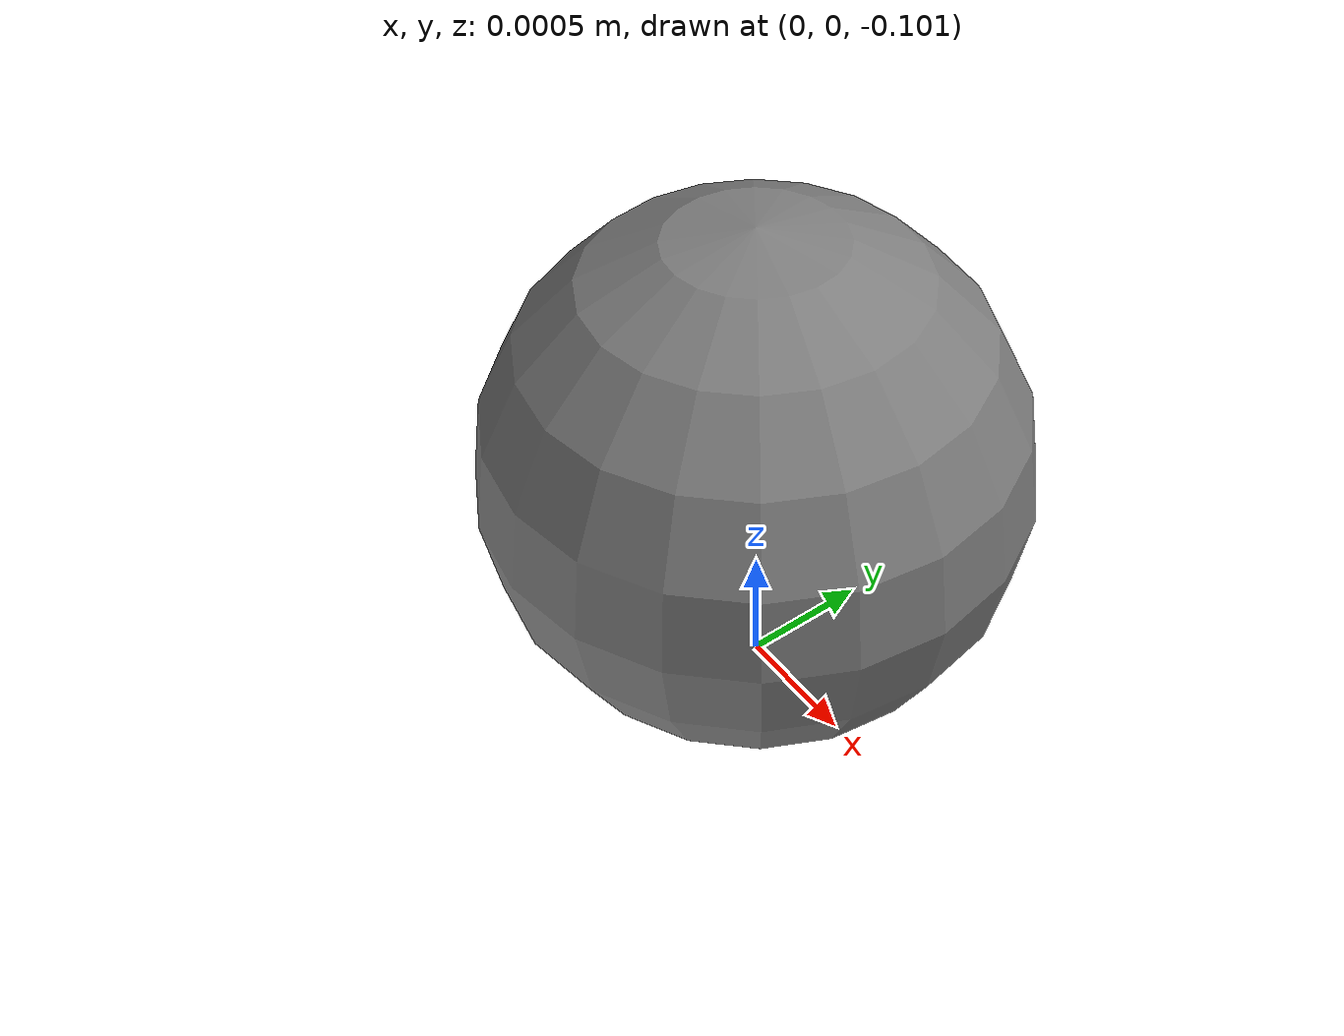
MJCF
<mujoco model="sph_zero">
            <option gravity="0 0 0" timestep="0.001"/>
            <worldbody>
                <geom name="floor" type="plane" size="10 10 0.1"/>
                <body name="sph" pos="0 0 -0.1">
                    <joint type="free"/>
                    <geom type="sphere" size="0.001"/>
                </body>
            </worldbody>
        </mujoco>
